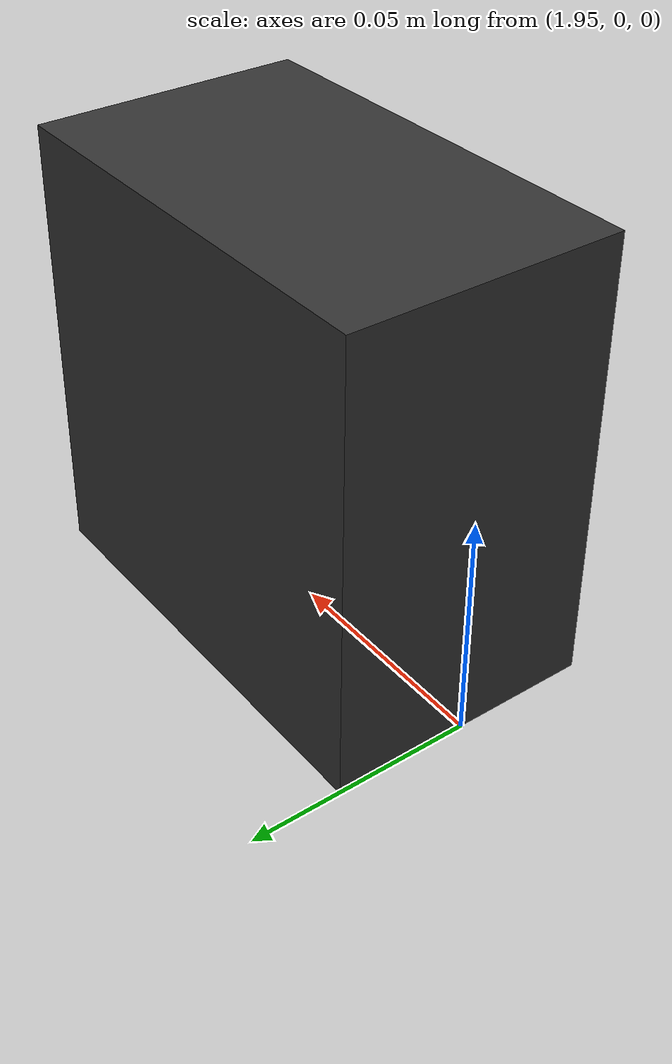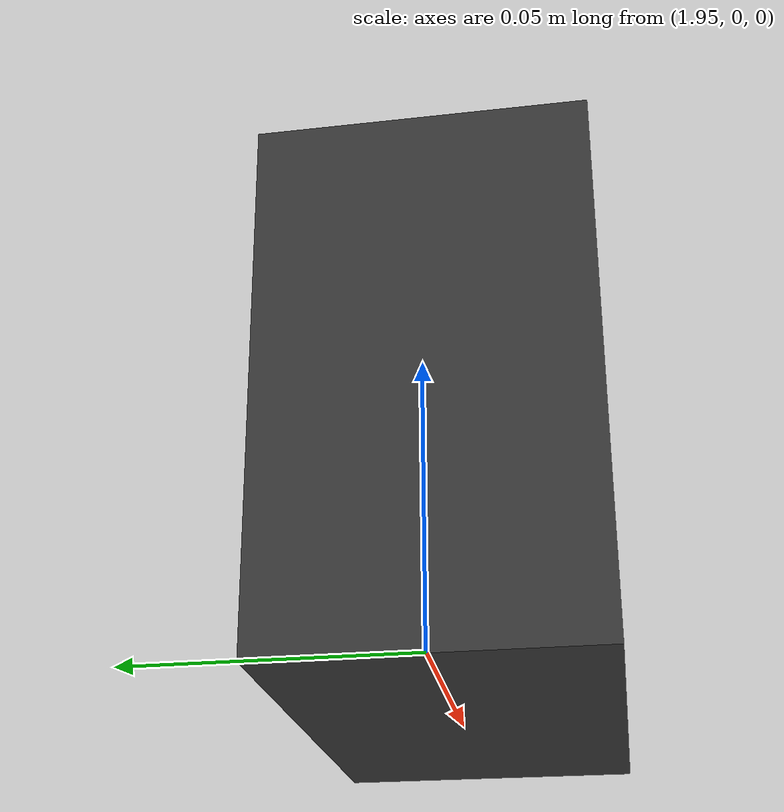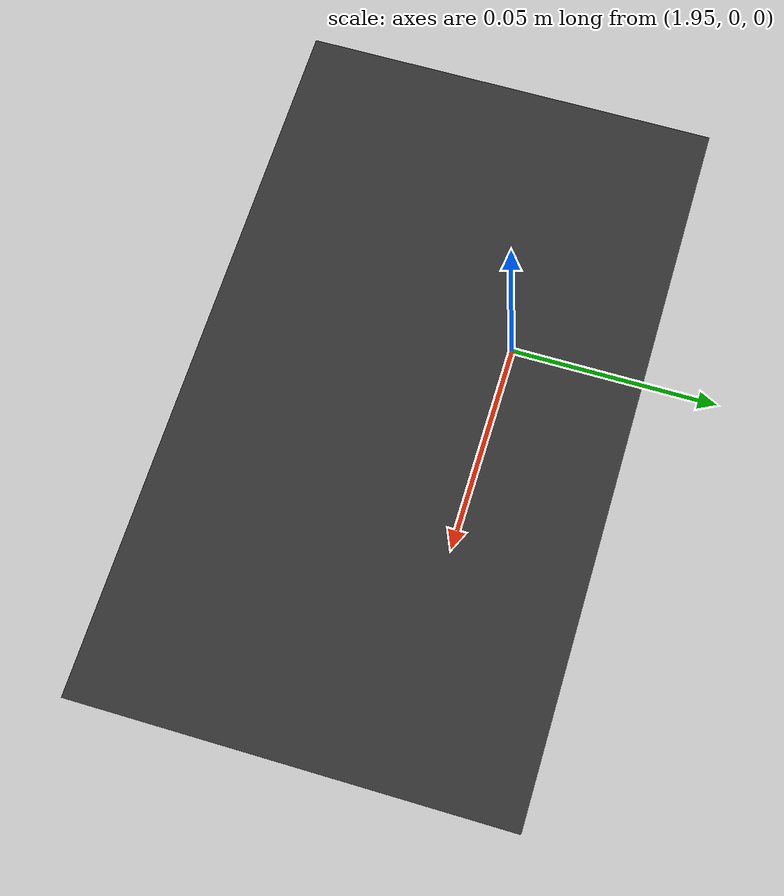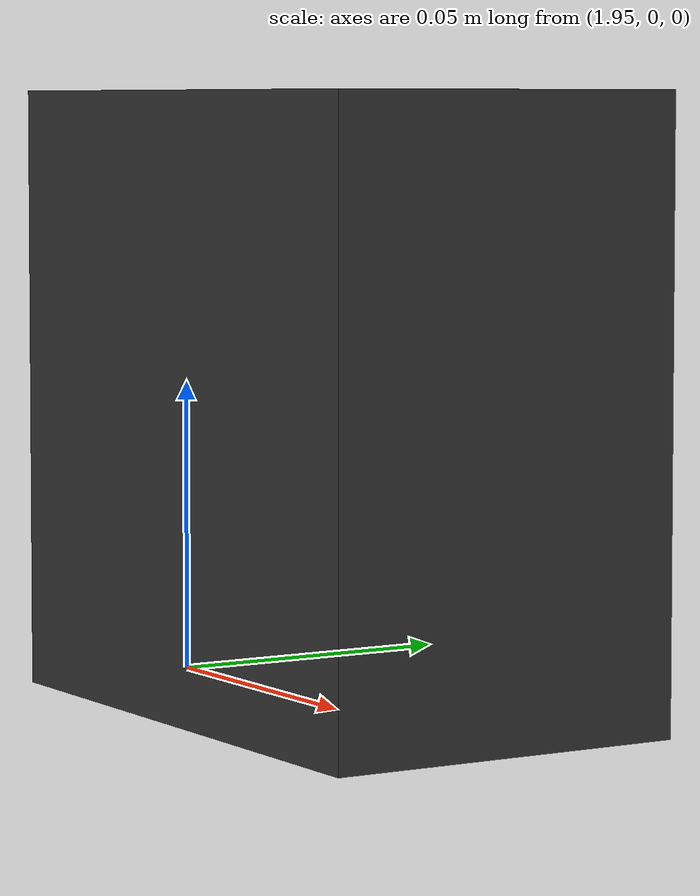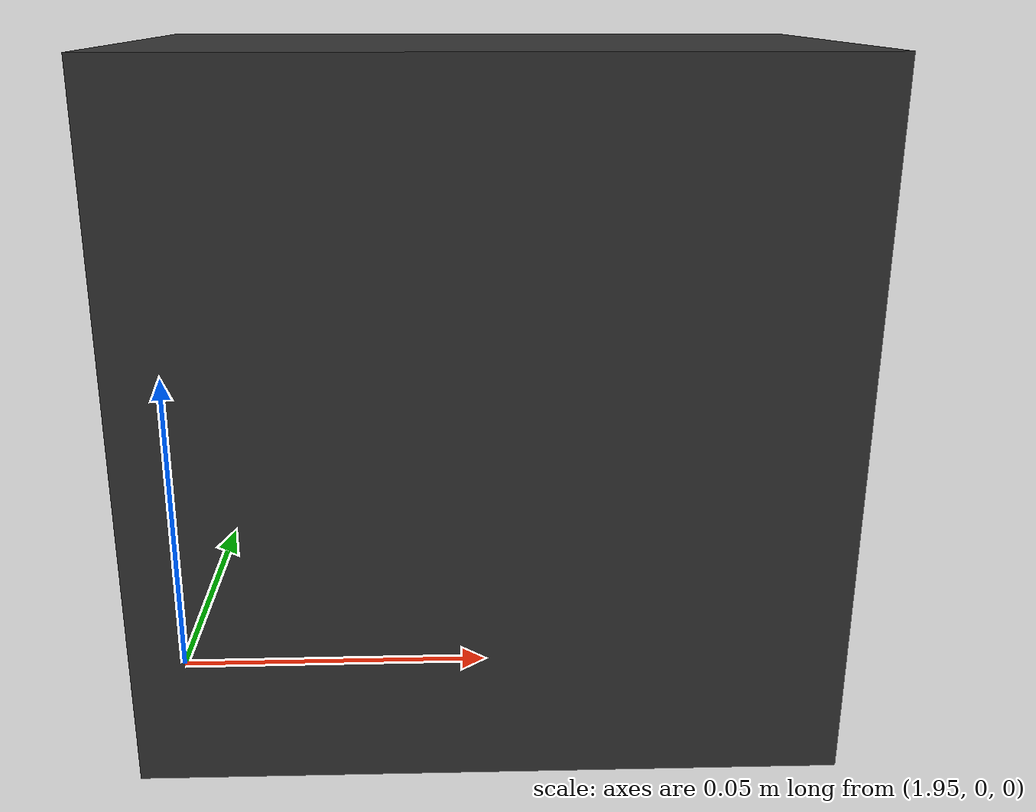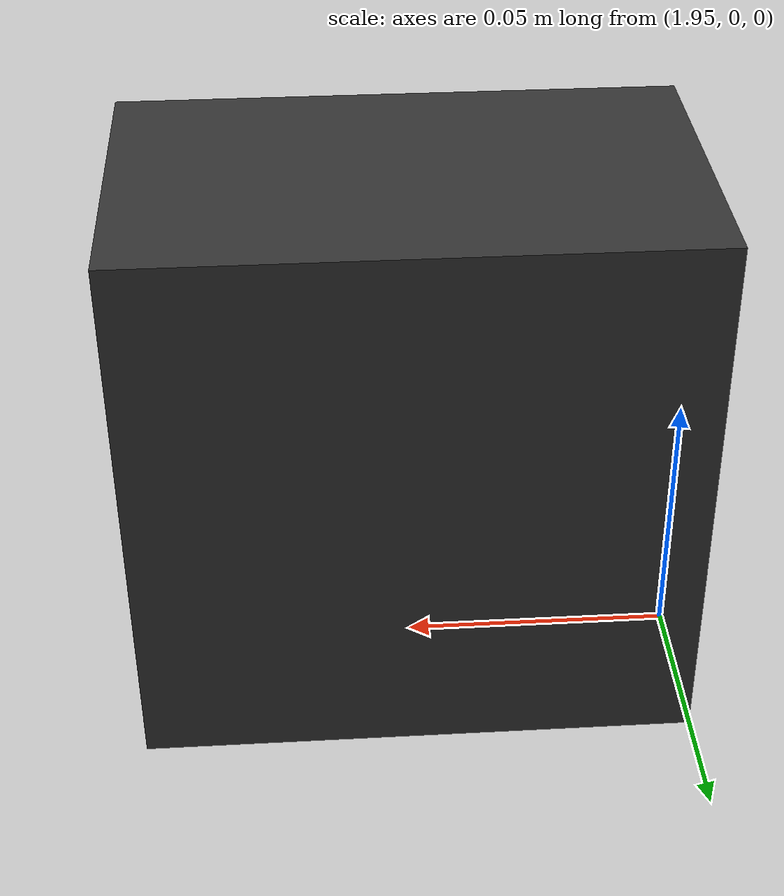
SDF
<sdf version='1.11' xmlns:gz='https://gazebosim.org/schemas'>
  <model name='overhead_camera'>
    <static>true</static>
    <pose>0 0 0.05 -1.5707963267948966 0 0</pose>

    <link name='overhead_camera_link'>
      <pose>2 0 0 0 0 0</pose>
      <inertial>
        <mass>0.01</mass>
        <inertia>
          <ixx>1e-6</ixx>
          <ixy>0</ixy>
          <ixz>0</ixz>
          <iyy>1e-6</iyy>
          <iyz>0</iyz>
          <izz>1e-6</izz>
        </inertia>
      </inertial>

      <visual name='camera_body_visual'>
        <pose>0 0 0 0 0 0</pose>
        <geometry>
          <box>
            <size>0.1 0.1 0.06</size>
          </box>
        </geometry>
        <material>
          <ambient>0.15 0.15 0.15 1</ambient>
          <diffuse>0.2 0.2 0.2 1</diffuse>
          <specular>0.05 0.05 0.05 1</specular>
        </material>
      </visual>

      <sensor name='overhead_camera_sensor' type='camera'>
        <pose>-0.3 0 0 0 -3.14 0</pose>
        <always_on>true</always_on>
        <update_rate>30</update_rate>
        <visualize>false</visualize>
        <topic>/overhead_camera</topic>
        <gz:frame_id>overhead_camera_link</gz:frame_id>
        <camera>
          <horizontal_fov>1.5707963267948966</horizontal_fov>
          <image>
            <width>1024</width>
            <height>1024</height>
            <format>R8G8B8</format>
          </image>
          <clip>
            <near>0.05</near>
            <far>20.0</far>
          </clip>
        </camera>
      </sensor>
    </link>
  </model>
</sdf>
